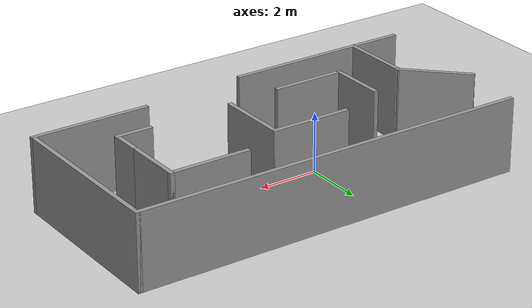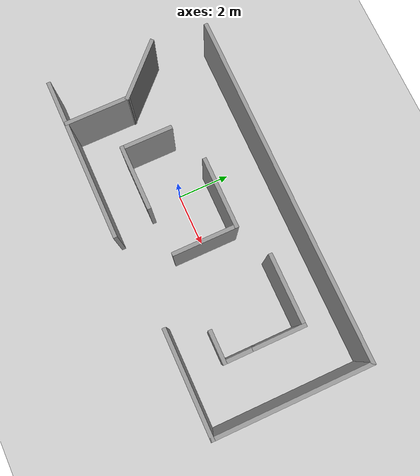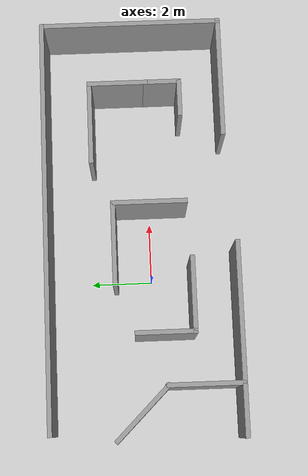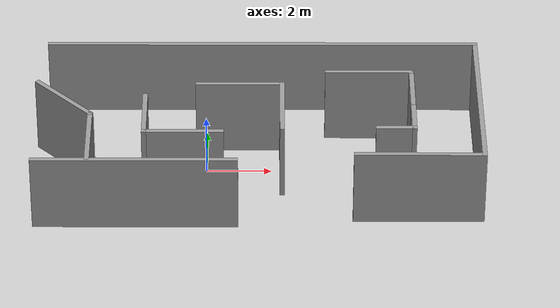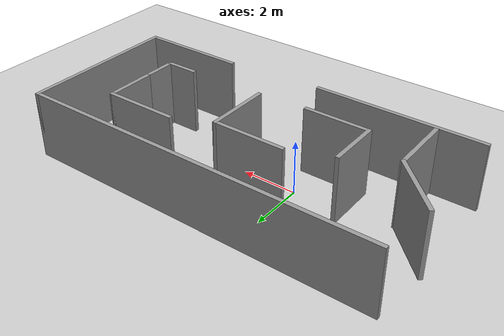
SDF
<sdf version="1.7">
 <world name="default">
  <light name="sun" type="directional">
   <pose>0 0 10 0 -0 0</pose>
   <diffuse>0.8 0.8 0.8 1</diffuse>
   <specular>0.2 0.2 0.2 1</specular>
   <attenuation>
    <range>1000</range>
    <constant>0.9</constant>
    <linear>0.01</linear>
    <quadratic>0.001</quadratic>
   </attenuation>
   <direction>-0.5 0.1 -0.9</direction>
   <spot><inner_angle>0</inner_angle><outer_angle>0</outer_angle><falloff>0</falloff></spot>
  </light>
  <model name="ground_plane">
   <static>1</static>
   <link name="link">
    <collision name="collision">
     <geometry><plane><normal>0 0 1</normal><size>100 100</size></plane></geometry>
     <surface>
      <contact><collide_bitmask>65535</collide_bitmask></contact>
      <friction><ode><mu>100</mu><mu2>50</mu2></ode></friction>
     </surface>
    </collision>
    <visual name="visual">
     <cast_shadows>0</cast_shadows>
     <geometry><plane><normal>0 0 1</normal><size>100 100</size></plane></geometry>
     <material>
      <script><uri>file://media/materials/scripts/gazebo.material</uri><name>Gazebo/Grey</name></script>
     </material>
    </visual>
   </link>
  </model>
  <gravity>0 0 -9.8</gravity>
  <magnetic_field>6e-06 2.3e-05 -4.2e-05</magnetic_field>
  <atmosphere type="adiabatic"/>
  <physics type="ode">
   <max_step_size>0.001</max_step_size>
   <real_time_factor>1</real_time_factor>
   <real_time_update_rate>1000</real_time_update_rate>
  </physics>
  <scene><ambient>0.4 0.4 0.4 1</ambient><background>0.7 0.7 0.7 1</background><shadows>1</shadows></scene>
  <audio><device>default</device></audio>
  <spherical_coordinates>
   <surface_model>EARTH_WGS84</surface_model>
   <latitude_deg>0</latitude_deg>
   <longitude_deg>0</longitude_deg>
   <elevation>0</elevation>
   <heading_deg>0</heading_deg>
  </spherical_coordinates>
  <model name="Untitled">
   <pose>1.57909 0.298648 0 0 -0 0</pose>
   <link name="Wall_1">
    <collision name="Wall_1_Collision">
     <geometry><box><size>13.5 0.15 2.5</size></box></geometry>
     <pose>0 0 1.25 0 -0 0</pose>
    </collision>
    <visual name="Wall_1_Visual">
     <pose>0 0 1.25 0 -0 0</pose>
     <geometry><box><size>13.5 0.15 2.5</size></box></geometry>
     <material>
      <script><uri>file://media/materials/scripts/gazebo.material</uri><name>Gazebo/Grey</name></script>
      <ambient>1 1 1 1</ambient>
     </material>
     <meta><layer>0</layer></meta>
    </visual>
    <pose>0.145458 3.0682 0 0 -0 0</pose>
   </link>
   <link name="Wall_10">
    <collision name="Wall_10_Collision">
     <geometry><box><size>2.5 0.15 2.5</size></box></geometry>
     <pose>0 0 1.25 0 -0 0</pose>
    </collision>
    <visual name="Wall_10_Visual">
     <pose>0 0 1.25 0 -0 0</pose>
     <geometry><box><size>2.5 0.15 2.5</size></box></geometry>
     <material>
      <script><uri>file://media/materials/scripts/gazebo.material</uri><name>Gazebo/Grey</name></script>
      <ambient>1 1 1 1</ambient>
     </material>
     <meta><layer>0</layer></meta>
    </visual>
    <pose>-2.28719 -1.6025 0 0 -0 0</pose>
   </link>
   <link name="Wall_12">
    <collision name="Wall_12_Collision">
     <geometry><box><size>2.75 0.15 2.5</size></box></geometry>
     <pose>0 0 1.25 0 -0 0</pose>
    </collision>
    <visual name="Wall_12_Visual">
     <pose>0 0 1.25 0 -0 0</pose>
     <geometry><box><size>2.75 0.15 2.5</size></box></geometry>
     <material>
      <script><uri>file://media/materials/scripts/gazebo.material</uri><name>Gazebo/Grey</name></script>
      <ambient>1 1 1 1</ambient>
     </material>
     <meta><layer>0</layer></meta>
    </visual>
    <pose>-0.552193 0.891497 0 0 -0 0</pose>
   </link>
   <link name="Wall_13">
    <collision name="Wall_13_Collision">
     <geometry><box><size>2.5 0.15 2.5</size></box></geometry>
     <pose>0 0 1.25 0 -0 0</pose>
    </collision>
    <visual name="Wall_13_Visual">
     <pose>0 0 1.25 0 -0 0</pose>
     <geometry><box><size>2.5 0.15 2.5</size></box></geometry>
     <material>
      <script><uri>file://media/materials/scripts/gazebo.material</uri><name>Gazebo/Grey</name></script>
      <ambient>1 1 1 1</ambient>
     </material>
     <meta><layer>0</layer></meta>
    </visual>
    <pose>0.747807 -0.283503 0 0 -0 -1.5708</pose>
   </link>
   <link name="Wall_15">
    <collision name="Wall_15_Collision">
     <geometry><box><size>1.25 0.15 2.5</size></box></geometry>
     <pose>0 0 1.25 0 -0 0</pose>
    </collision>
    <visual name="Wall_15_Visual">
     <pose>0 0 1.25 0 -0 0</pose>
     <geometry><box><size>1.25 0.15 2.5</size></box></geometry>
     <material>
      <script><uri>file://media/materials/scripts/gazebo.material</uri><name>Gazebo/Grey</name></script>
      <ambient>1 1 1 1</ambient>
     </material>
     <meta><layer>0</layer></meta>
    </visual>
    <pose>4.21781 -1.4085 0 0 -0 0</pose>
   </link>
   <link name="Wall_16">
    <collision name="Wall_16_Collision">
     <geometry><box><size>1.25 0.15 2.5</size></box></geometry>
     <pose>0 0 1.25 0 -0 0</pose>
    </collision>
    <visual name="Wall_16_Visual">
     <pose>0 0 1.25 0 -0 0</pose>
     <geometry><box><size>1.25 0.15 2.5</size></box></geometry>
     <material>
      <script><uri>file://media/materials/scripts/gazebo.material</uri><name>Gazebo/Grey</name></script>
      <ambient>1 1 1 1</ambient>
     </material>
     <meta><layer>0</layer></meta>
    </visual>
    <pose>4.76781 -0.858503 0 0 -0 1.5708</pose>
   </link>
   <link name="Wall_17">
    <collision name="Wall_17_Collision">
     <geometry><box><size>2 0.15 2.5</size></box></geometry>
     <pose>0 0 1.25 0 -0 0</pose>
    </collision>
    <visual name="Wall_17_Visual">
     <pose>0 0 1.25 0 -0 0</pose>
     <geometry><box><size>2 0.15 2.5</size></box></geometry>
     <material>
      <script><uri>file://media/materials/scripts/gazebo.material</uri><name>Gazebo/Grey</name></script>
      <ambient>1 1 1 1</ambient>
     </material>
     <meta><layer>0</layer></meta>
    </visual>
    <pose>4.76781 0.616497 0 0 -0 1.5708</pose>
   </link>
   <link name="Wall_18">
    <collision name="Wall_18_Collision">
     <geometry><box><size>2.75 0.15 2.5</size></box></geometry>
     <pose>0 0 1.25 0 -0 0</pose>
    </collision>
    <visual name="Wall_18_Visual">
     <pose>0 0 1.25 0 -0 0</pose>
     <geometry><box><size>2.75 0.15 2.5</size></box></geometry>
     <material>
      <script><uri>file://media/materials/scripts/gazebo.material</uri><name>Gazebo/Grey</name></script>
      <ambient>1 1 1 1</ambient>
     </material>
     <meta><layer>0</layer></meta>
    </visual>
    <pose>3.46781 1.5415 0 0 -0 3.14159</pose>
   </link>
   <link name="Wall_2">
    <collision name="Wall_2_Collision">
     <geometry><box><size>6 0.15 2.5</size></box></geometry>
     <pose>0 0 1.25 0 -0 0</pose>
    </collision>
    <visual name="Wall_2_Visual">
     <pose>0 0 1.25 0 -0 0</pose>
     <geometry><box><size>6 0.15 2.5</size></box></geometry>
     <material>
      <script><uri>file://media/materials/scripts/gazebo.material</uri><name>Gazebo/Grey</name></script>
      <ambient>1 1 1 1</ambient>
     </material>
     <meta><layer>0</layer></meta>
    </visual>
    <pose>6.82046 0.1432 0 0 -0 -1.5708</pose>
   </link>
   <link name="Wall_20">
    <collision name="Wall_20_Collision">
     <geometry><box><size>2.5 0.15 2.5</size></box></geometry>
     <pose>0 0 1.25 0 -0 0</pose>
    </collision>
    <visual name="Wall_20_Visual">
     <pose>0 0 1.25 0 -0 0</pose>
     <geometry><box><size>2.5 0.15 2.5</size></box></geometry>
     <material>
      <script><uri>file://media/materials/scripts/gazebo.material</uri><name>Gazebo/Grey</name></script>
      <ambient>1 1 1 1</ambient>
     </material>
     <meta><layer>0</layer></meta>
    </visual>
    <pose>-5.95854 0.1391 0 0 -0 2.35619</pose>
   </link>
   <link name="Wall_3">
    <collision name="Wall_3_Collision">
     <geometry><box><size>4 0.15 2.5</size></box></geometry>
     <pose>0 0 1.25 0 -0 0</pose>
    </collision>
    <visual name="Wall_3_Visual">
     <pose>0 0 1.25 0 -0 0</pose>
     <geometry><box><size>4 0.15 2.5</size></box></geometry>
     <material>
      <script><uri>file://media/materials/scripts/gazebo.material</uri><name>Gazebo/Grey</name></script>
      <ambient>1 1 1 1</ambient>
     </material>
     <meta><layer>0</layer></meta>
    </visual>
    <pose>4.89546 -2.7818 0 0 -0 3.14159</pose>
   </link>
   <link name="Wall_5">
    <collision name="Wall_5_Collision">
     <geometry><box><size>6.25 0.15 2.5</size></box></geometry>
     <pose>0 0 1.25 0 -0 0</pose>
    </collision>
    <visual name="Wall_5_Visual">
     <pose>0 0 1.25 0 -0 0</pose>
     <geometry><box><size>6.25 0.15 2.5</size></box></geometry>
     <material>
      <script><uri>file://media/materials/scripts/gazebo.material</uri><name>Gazebo/Grey</name></script>
      <ambient>1 1 1 1</ambient>
     </material>
     <meta><layer>0</layer></meta>
    </visual>
    <pose>-3.71759 -3.0682 0 0 -0 0</pose>
   </link>
   <link name="Wall_7">
    <collision name="Wall_7_Collision">
     <geometry><box><size>2.5 0.15 2.5</size></box></geometry>
     <pose>0 0 1.25 0 -0 0</pose>
    </collision>
    <visual name="Wall_7_Visual">
     <pose>0 0 1.25 0 -0 0</pose>
     <geometry><box><size>2.5 0.15 2.5</size></box></geometry>
     <material>
      <script><uri>file://media/materials/scripts/gazebo.material</uri><name>Gazebo/Grey</name></script>
      <ambient>1 1 1 1</ambient>
     </material>
     <meta><layer>0</layer></meta>
    </visual>
    <pose>-5.12769 -1.86675 0 0 -0 1.5708</pose>
   </link>
   <link name="Wall_9">
    <collision name="Wall_9_Collision">
     <geometry><box><size>2 0.15 2.5</size></box></geometry>
     <pose>0 0 1.25 0 -0 0</pose>
    </collision>
    <visual name="Wall_9_Visual">
     <pose>0 0 1.25 0 -0 0</pose>
     <geometry><box><size>2 0.15 2.5</size></box></geometry>
     <material>
      <script><uri>file://media/materials/scripts/gazebo.material</uri><name>Gazebo/Grey</name></script>
      <ambient>1 1 1 1</ambient>
     </material>
     <meta><layer>0</layer></meta>
    </visual>
    <pose>-3.46219 -0.677503 0 0 -0 -1.5708</pose>
   </link>
   <static>1</static>
  </model>
 </world>
</sdf>
